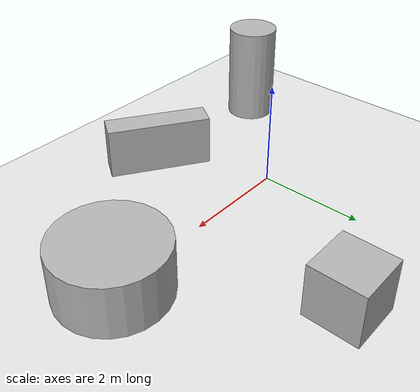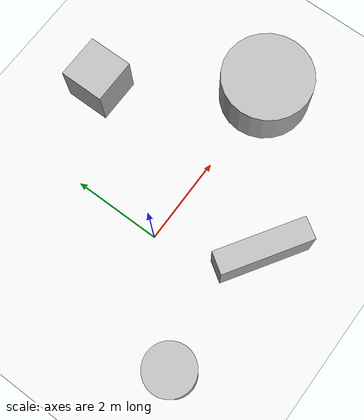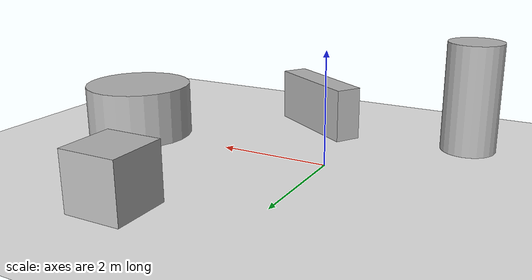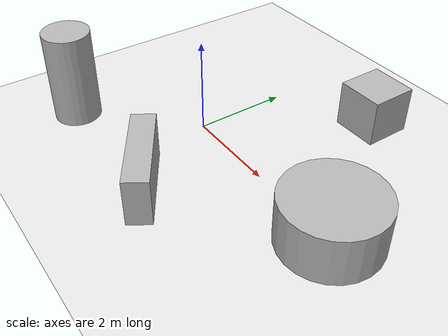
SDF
<sdf version="1.6">
 <world name="default">
  <model name="slippery_ground">
   <static>true</static>
   <link name="link">
    <collision name="collision">
     <geometry><plane><normal>0 0 1</normal><size>100 100</size></plane></geometry>
     <surface><friction><ode><mu>10</mu><mu2>10</mu2></ode></friction></surface>
    </collision>
    <visual name="visual">
     <geometry><plane><normal>0 0 1</normal><size>100 100</size></plane></geometry>
     <material>
      <script><uri>file://media/materials/scripts/gazebo.material</uri><name>Gazebo/White</name></script>
     </material>
    </visual>
   </link>
  </model>
  <model name="fixed_cube1">
   <static>true</static>
   <pose>2 3 0.5 0 0 0</pose>
   <link name="link">
    <collision name="collision"><geometry><box><size>1 1 1</size></box></geometry></collision>
    <visual name="visual"><geometry><box><size>1 1 1</size></box></geometry></visual>
   </link>
  </model>
  <model name="fixed_cube2">
   <static>true</static>
   <pose>1 -2 0.5 0 0 1</pose>
   <link name="link">
    <collision name="collision"><geometry><box><size>0.5 2 1</size></box></geometry></collision>
    <visual name="visual"><geometry><box><size>0.5 2 1</size></box></geometry></visual>
   </link>
  </model>
  <model name="fixed_cylinder1">
   <static>true</static>
   <pose>-2 -2 1 0 0 0</pose>
   <link name="link">
    <collision name="collision">
     <geometry><cylinder><radius>0.5</radius><length>2</length></cylinder></geometry>
    </collision>
    <visual name="visual">
     <geometry><cylinder><radius>0.5</radius><length>2</length></cylinder></geometry>
    </visual>
   </link>
  </model>
  <model name="fixed_cylinder2">
   <static>true</static>
   <pose>4 0 0.5 0 0 0</pose>
   <link name="link">
    <collision name="collision">
     <geometry><cylinder><radius>1</radius><length>1</length></cylinder></geometry>
    </collision>
    <visual name="visual"><geometry><cylinder><radius>1</radius><length>1</length></cylinder></geometry></visual>
   </link>
  </model>
  <include><uri>model://sun</uri></include>
  <scene><shadows>false</shadows></scene>
  <physics type="ode">
   <real_time_update_rate>1000.0</real_time_update_rate>
   <max_step_size>0.001</max_step_size>
   <real_time_factor>1</real_time_factor>
   <ode>
    <solver>
     <type>quick</type>
     <iters>150</iters>
     <precon_iters>0</precon_iters>
     <sor>1.400000</sor>
     <use_dynamic_moi_rescaling>1</use_dynamic_moi_rescaling>
    </solver>
    <constraints>
     <cfm>0.00001</cfm>
     <erp>0.2</erp>
     <contact_max_correcting_vel>2000.000000</contact_max_correcting_vel>
     <contact_surface_layer>0.01000</contact_surface_layer>
    </constraints>
   </ode>
  </physics>
 </world>
</sdf>
